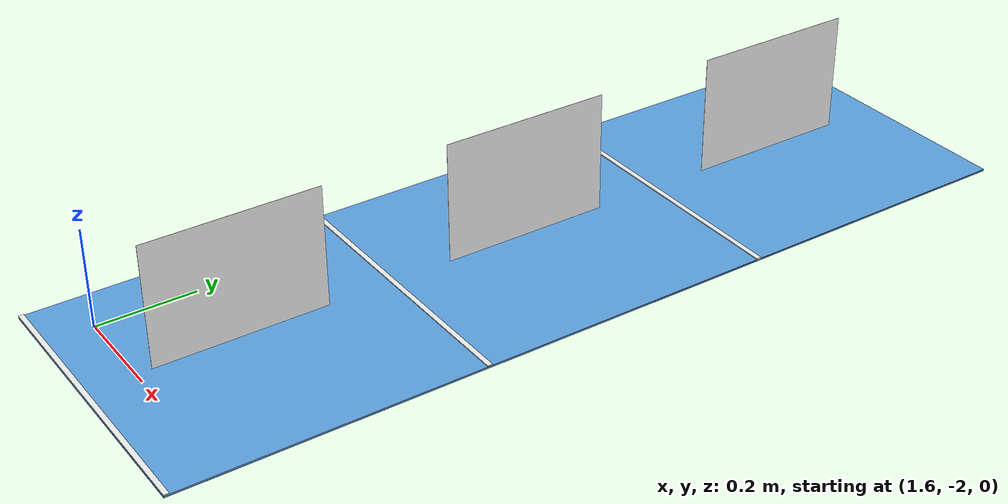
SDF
<sdf version="1.6">
 <world name="sq_community_4p2">
  <include><uri>model://sun</uri></include>
  <model name="sq4_zone_car_parking">
   <static>true</static>
   <pose>1.8000 -1.2000 0.0000 0 0 0.00000</pose>
   <link name="surface">
    <visual name="surface_vis">
     <pose>0.0000 0.0000 0.0018 0 0 0.00000</pose>
     <geometry><box><size>0.6000 1.8000 0.0035</size></box></geometry>
     <material>
      <ambient>0.4500 0.7100 0.9300 1.0000</ambient>
      <diffuse>0.4500 0.7100 0.9300 1.0000</diffuse>
     </material>
    </visual>
   </link>
  </model>
  <model name="sq4_car_bay_1">
   <static>true</static>
   <pose>1.8000 -1.8000 0.0000 0 0 0.00000</pose>
   <link name="surface">
    <visual name="surface_vis">
     <pose>0.0000 0.0000 0.0020 0 0 0.00000</pose>
     <geometry><box><size>0.6000 0.6000 0.0040</size></box></geometry>
     <material>
      <ambient>0.3700 0.6500 0.9000 1.0000</ambient>
      <diffuse>0.3700 0.6500 0.9000 1.0000</diffuse>
     </material>
    </visual>
   </link>
  </model>
  <model name="sq4_car_bay_line_1">
   <static>true</static>
   <pose>1.8000 -2.0950 0.0000 0 0 0.00000</pose>
   <link name="surface">
    <visual name="surface_vis">
     <pose>0.0000 0.0000 0.0030 0 0 0.00000</pose>
     <geometry><box><size>0.6000 0.0100 0.0060</size></box></geometry>
     <material>
      <ambient>0.9600 0.9700 0.9700 1.0000</ambient>
      <diffuse>0.9600 0.9700 0.9700 1.0000</diffuse>
     </material>
    </visual>
   </link>
  </model>
  <model name="sq4_car_bay_2">
   <static>true</static>
   <pose>1.8000 -1.2000 0.0000 0 0 0.00000</pose>
   <link name="surface">
    <visual name="surface_vis">
     <pose>0.0000 0.0000 0.0020 0 0 0.00000</pose>
     <geometry><box><size>0.6000 0.6000 0.0040</size></box></geometry>
     <material>
      <ambient>0.3700 0.6500 0.9000 1.0000</ambient>
      <diffuse>0.3700 0.6500 0.9000 1.0000</diffuse>
     </material>
    </visual>
   </link>
  </model>
  <model name="sq4_car_bay_line_2">
   <static>true</static>
   <pose>1.8000 -1.4950 0.0000 0 0 0.00000</pose>
   <link name="surface">
    <visual name="surface_vis">
     <pose>0.0000 0.0000 0.0030 0 0 0.00000</pose>
     <geometry><box><size>0.6000 0.0100 0.0060</size></box></geometry>
     <material>
      <ambient>0.9600 0.9700 0.9700 1.0000</ambient>
      <diffuse>0.9600 0.9700 0.9700 1.0000</diffuse>
     </material>
    </visual>
   </link>
  </model>
  <model name="sq4_car_bay_3">
   <static>true</static>
   <pose>1.8000 -0.6000 0.0000 0 0 0.00000</pose>
   <link name="surface">
    <visual name="surface_vis">
     <pose>0.0000 0.0000 0.0020 0 0 0.00000</pose>
     <geometry><box><size>0.6000 0.6000 0.0040</size></box></geometry>
     <material>
      <ambient>0.3700 0.6500 0.9000 1.0000</ambient>
      <diffuse>0.3700 0.6500 0.9000 1.0000</diffuse>
     </material>
    </visual>
   </link>
  </model>
  <model name="sq4_car_bay_line_3">
   <static>true</static>
   <pose>1.8000 -0.8950 0.0000 0 0 0.00000</pose>
   <link name="surface">
    <visual name="surface_vis">
     <pose>0.0000 0.0000 0.0030 0 0 0.00000</pose>
     <geometry><box><size>0.6000 0.0100 0.0060</size></box></geometry>
     <material>
      <ambient>0.9600 0.9700 0.9700 1.0000</ambient>
      <diffuse>0.9600 0.9700 0.9700 1.0000</diffuse>
     </material>
    </visual>
   </link>
  </model>
  <model name="sq4_car_1">
   <static>true</static>
   <pose>1.7800 -1.8000 0.0000 0 0 3.14159</pose>
   <link name="car_rear">
    <visual name="car_rear_vis">
     <pose>0.0000 0.0000 0.1250 0 0 0.00000</pose>
     <geometry><box><size>0.0005 0.3450 0.2500</size></box></geometry>
     <material>
      <script>
       <uri>model://sq_competition_assets/materials/scripts</uri>
       <uri>model://sq_competition_assets/materials/textures</uri>
       <name>SQ4_CarRear</name>
      </script>
      <ambient>1 1 1 1</ambient>
      <diffuse>1 1 1 1</diffuse>
     </material>
    </visual>
   </link>
   <link name="plate">
    <visual name="plate_vis">
     <pose>0.0004 0.0000 0.1250 0 0 0.00000</pose>
     <geometry><box><size>0.0001 0.0950 0.0300</size></box></geometry>
     <material>
      <script>
       <uri>model://sq_competition_assets/materials/scripts</uri>
       <uri>model://sq_competition_assets/materials/textures</uri>
       <name>SQ4_Plate_Blue</name>
      </script>
      <ambient>1 1 1 1</ambient>
      <diffuse>1 1 1 1</diffuse>
     </material>
    </visual>
   </link>
  </model>
  <model name="sq4_car_2">
   <static>true</static>
   <pose>1.7800 -1.2000 0.0000 0 0 3.14159</pose>
   <link name="car_rear">
    <visual name="car_rear_vis">
     <pose>0.0000 0.0000 0.1250 0 0 0.00000</pose>
     <geometry><box><size>0.0005 0.3450 0.2500</size></box></geometry>
     <material>
      <script>
       <uri>model://sq_competition_assets/materials/scripts</uri>
       <uri>model://sq_competition_assets/materials/textures</uri>
       <name>SQ4_CarRearLarge</name>
      </script>
      <ambient>1 1 1 1</ambient>
      <diffuse>1 1 1 1</diffuse>
     </material>
    </visual>
   </link>
   <link name="plate">
    <visual name="plate_vis">
     <pose>0.0004 0.0000 0.0900 0 0 0.00000</pose>
     <geometry><box><size>0.0001 0.0950 0.0300</size></box></geometry>
     <material>
      <script>
       <uri>model://sq_competition_assets/materials/scripts</uri>
       <uri>model://sq_competition_assets/materials/textures</uri>
       <name>SQ4_Plate_Yellow</name>
      </script>
      <ambient>1 1 1 1</ambient>
      <diffuse>1 1 1 1</diffuse>
     </material>
    </visual>
   </link>
  </model>
  <model name="sq4_car_3">
   <static>true</static>
   <pose>1.7800 -0.6000 0.0000 0 0 3.14159</pose>
   <link name="car_rear">
    <visual name="car_rear_vis">
     <pose>0.0000 0.0000 0.1250 0 0 0.00000</pose>
     <geometry><box><size>0.0005 0.3450 0.2500</size></box></geometry>
     <material>
      <script>
       <uri>model://sq_competition_assets/materials/scripts</uri>
       <uri>model://sq_competition_assets/materials/textures</uri>
       <name>SQ4_CarRear</name>
      </script>
      <ambient>1 1 1 1</ambient>
      <diffuse>1 1 1 1</diffuse>
     </material>
    </visual>
   </link>
   <link name="plate">
    <visual name="plate_vis">
     <pose>0.0004 0.0000 0.1250 0 0 0.00000</pose>
     <geometry><box><size>0.0001 0.0950 0.0300</size></box></geometry>
     <material>
      <script>
       <uri>model://sq_competition_assets/materials/scripts</uri>
       <uri>model://sq_competition_assets/materials/textures</uri>
       <name>SQ4_Plate_Green</name>
      </script>
      <ambient>1 1 1 1</ambient>
      <diffuse>1 1 1 1</diffuse>
     </material>
    </visual>
   </link>
  </model>
 </world>
</sdf>
